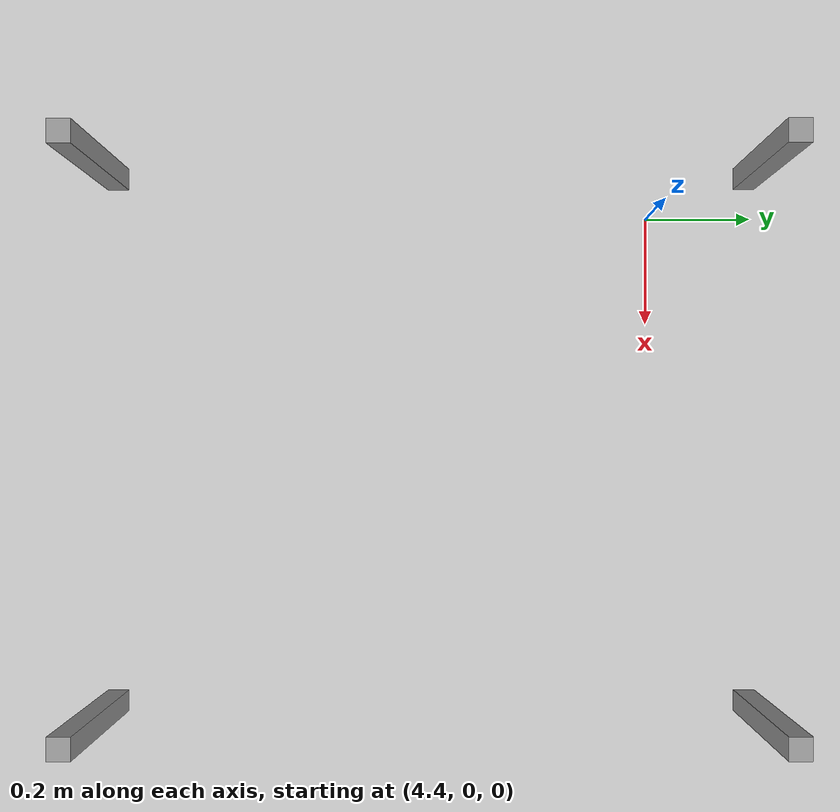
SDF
<sdf version="1.7">
 <world name="default">
  <model name="ground_plane">
   <static>1</static>
   <link name="link">
    <collision name="collision">
     <geometry><plane><normal>0 0 1</normal><size>100 100</size></plane></geometry>
     <surface>
      <contact><collide_bitmask>65535</collide_bitmask></contact>
      <friction><ode><mu>100</mu><mu2>50</mu2></ode></friction>
     </surface>
    </collision>
    <visual name="visual">
     <cast_shadows>0</cast_shadows>
     <geometry><plane><normal>0 0 1</normal><size>100 100</size></plane></geometry>
     <material>
      <script><uri>file://media/materials/scripts/gazebo.material</uri><name>Gazebo/Grey</name></script>
     </material>
    </visual>
   </link>
  </model>
  <model name="trolley2">
   <link name="link_0">
    <inertial>
     <mass>1.79769e+308</mass>
     <inertia>
      <ixx>1.79769e+308</ixx>
      <ixy>0</ixy>
      <ixz>0</ixz>
      <iyy>1.79769e+308</iyy>
      <iyz>0</iyz>
      <izz>1.79769e+308</izz>
     </inertia>
    </inertial>
    <pose>-0.5 -0.6 -0 0 -0 0</pose>
    <visual name="visual">
     <geometry><box><size>0.04 0.04 0.35</size></box></geometry>
     <material>
      <lighting>1</lighting>
      <script><uri>file://media/materials/scripts/gazebo.material</uri><name>Gazebo/Grey</name></script>
      <shader type="pixel"><normal_map>__default__</normal_map></shader>
      <ambient>0.3 0.3 0.3 1</ambient>
      <diffuse>0.7 0.7 0.7 1</diffuse>
      <specular>0.01 0.01 0.01 1</specular>
      <emissive>0 0 0 1</emissive>
     </material>
    </visual>
    <collision name="collision">
     <geometry><box><size>0.04 0.04 0.35</size></box></geometry>
     <surface>
      <friction>
       <ode><mu>1</mu><mu2>1</mu2><fdir1>0 0 0</fdir1><slip1>0</slip1><slip2>0</slip2></ode>
       <torsional>
        <coefficient>1</coefficient>
        <patch_radius>0</patch_radius>
        <surface_radius>0</surface_radius>
        <use_patch_radius>1</use_patch_radius>
        <ode><slip>0</slip></ode>
       </torsional>
      </friction>
      <bounce><restitution_coefficient>0</restitution_coefficient><threshold>1e+06</threshold></bounce>
      <contact>
       <collide_without_contact>0</collide_without_contact>
       <collide_without_contact_bitmask>1</collide_without_contact_bitmask>
       <collide_bitmask>1</collide_bitmask>
       <ode>
        <soft_cfm>0</soft_cfm>
        <soft_erp>0.2</soft_erp>
        <kp>1e+13</kp>
        <kd>1</kd>
        <max_vel>0.01</max_vel>
        <min_depth>0</min_depth>
       </ode>
       <bullet>
        <split_impulse>1</split_impulse>
        <split_impulse_penetration_threshold>-0.01</split_impulse_penetration_threshold>
        <soft_cfm>0</soft_cfm>
        <soft_erp>0.2</soft_erp>
        <kp>1e+13</kp>
        <kd>1</kd>
       </bullet>
      </contact>
     </surface>
    </collision>
    <collision name="collision_5">
     <geometry><box><size>0.04 0.04 0.35</size></box></geometry>
     <surface>
      <friction>
       <ode><mu>1</mu><mu2>1</mu2><fdir1>0 0 0</fdir1><slip1>0</slip1><slip2>0</slip2></ode>
       <torsional>
        <coefficient>1</coefficient>
        <patch_radius>0</patch_radius>
        <surface_radius>0</surface_radius>
        <use_patch_radius>1</use_patch_radius>
        <ode><slip>0</slip></ode>
       </torsional>
      </friction>
      <bounce><restitution_coefficient>0</restitution_coefficient><threshold>1e+06</threshold></bounce>
      <contact>
       <collide_without_contact>0</collide_without_contact>
       <collide_without_contact_bitmask>1</collide_without_contact_bitmask>
       <collide_bitmask>1</collide_bitmask>
       <ode>
        <soft_cfm>0</soft_cfm>
        <soft_erp>0.2</soft_erp>
        <kp>1e+13</kp>
        <kd>1</kd>
        <max_vel>0.01</max_vel>
        <min_depth>0</min_depth>
       </ode>
       <bullet>
        <split_impulse>1</split_impulse>
        <split_impulse_penetration_threshold>-0.01</split_impulse_penetration_threshold>
        <soft_cfm>0</soft_cfm>
        <soft_erp>0.2</soft_erp>
        <kp>1e+13</kp>
        <kd>1</kd>
       </bullet>
      </contact>
     </surface>
    </collision>
    <collision name="collision_1">
     <geometry><box><size>0.04 0.04 0.35</size></box></geometry>
     <surface>
      <friction>
       <ode><mu>1</mu><mu2>1</mu2><fdir1>0 0 0</fdir1><slip1>0</slip1><slip2>0</slip2></ode>
       <torsional>
        <coefficient>1</coefficient>
        <patch_radius>0</patch_radius>
        <surface_radius>0</surface_radius>
        <use_patch_radius>1</use_patch_radius>
        <ode><slip>0</slip></ode>
       </torsional>
      </friction>
      <bounce><restitution_coefficient>0</restitution_coefficient><threshold>1e+06</threshold></bounce>
      <contact>
       <collide_without_contact>0</collide_without_contact>
       <collide_without_contact_bitmask>1</collide_without_contact_bitmask>
       <collide_bitmask>1</collide_bitmask>
       <ode>
        <soft_cfm>0</soft_cfm>
        <soft_erp>0.2</soft_erp>
        <kp>1e+13</kp>
        <kd>1</kd>
        <max_vel>0.01</max_vel>
        <min_depth>0</min_depth>
       </ode>
       <bullet>
        <split_impulse>1</split_impulse>
        <split_impulse_penetration_threshold>-0.01</split_impulse_penetration_threshold>
        <soft_cfm>0</soft_cfm>
        <soft_erp>0.2</soft_erp>
        <kp>1e+13</kp>
        <kd>1</kd>
       </bullet>
      </contact>
     </surface>
    </collision>
    <collision name="collision_2">
     <geometry><box><size>0.04 0.04 0.35</size></box></geometry>
     <surface>
      <friction>
       <ode><mu>1</mu><mu2>1</mu2><fdir1>0 0 0</fdir1><slip1>0</slip1><slip2>0</slip2></ode>
       <torsional>
        <coefficient>1</coefficient>
        <patch_radius>0</patch_radius>
        <surface_radius>0</surface_radius>
        <use_patch_radius>1</use_patch_radius>
        <ode><slip>0</slip></ode>
       </torsional>
      </friction>
      <bounce><restitution_coefficient>0</restitution_coefficient><threshold>1e+06</threshold></bounce>
      <contact>
       <collide_without_contact>0</collide_without_contact>
       <collide_without_contact_bitmask>1</collide_without_contact_bitmask>
       <collide_bitmask>1</collide_bitmask>
       <ode>
        <soft_cfm>0</soft_cfm>
        <soft_erp>0.2</soft_erp>
        <kp>1e+13</kp>
        <kd>1</kd>
        <max_vel>0.01</max_vel>
        <min_depth>0</min_depth>
       </ode>
       <bullet>
        <split_impulse>1</split_impulse>
        <split_impulse_penetration_threshold>-0.01</split_impulse_penetration_threshold>
        <soft_cfm>0</soft_cfm>
        <soft_erp>0.2</soft_erp>
        <kp>1e+13</kp>
        <kd>1</kd>
       </bullet>
      </contact>
     </surface>
    </collision>
    <collision name="collision_3">
     <geometry><box><size>0.04 0.04 0.35</size></box></geometry>
     <surface>
      <friction>
       <ode><mu>1</mu><mu2>1</mu2><fdir1>0 0 0</fdir1><slip1>0</slip1><slip2>0</slip2></ode>
       <torsional>
        <coefficient>1</coefficient>
        <patch_radius>0</patch_radius>
        <surface_radius>0</surface_radius>
        <use_patch_radius>1</use_patch_radius>
        <ode><slip>0</slip></ode>
       </torsional>
      </friction>
      <bounce><restitution_coefficient>0</restitution_coefficient><threshold>1e+06</threshold></bounce>
      <contact>
       <collide_without_contact>0</collide_without_contact>
       <collide_without_contact_bitmask>1</collide_without_contact_bitmask>
       <collide_bitmask>1</collide_bitmask>
       <ode>
        <soft_cfm>0</soft_cfm>
        <soft_erp>0.2</soft_erp>
        <kp>1e+13</kp>
        <kd>1</kd>
        <max_vel>0.01</max_vel>
        <min_depth>0</min_depth>
       </ode>
       <bullet>
        <split_impulse>1</split_impulse>
        <split_impulse_penetration_threshold>-0.01</split_impulse_penetration_threshold>
        <soft_cfm>0</soft_cfm>
        <soft_erp>0.2</soft_erp>
        <kp>1e+13</kp>
        <kd>1</kd>
       </bullet>
      </contact>
     </surface>
    </collision>
    <collision name="collision_4">
     <geometry><sphere><radius>1.79769e+308</radius></sphere></geometry>
     <surface>
      <friction>
       <ode><mu>1</mu><mu2>1</mu2><fdir1>0 0 0</fdir1><slip1>0</slip1><slip2>0</slip2></ode>
       <torsional>
        <coefficient>1</coefficient>
        <patch_radius>0</patch_radius>
        <surface_radius>0</surface_radius>
        <use_patch_radius>1</use_patch_radius>
        <ode><slip>0</slip></ode>
       </torsional>
      </friction>
      <bounce><restitution_coefficient>0</restitution_coefficient><threshold>1e+06</threshold></bounce>
      <contact>
       <collide_without_contact>0</collide_without_contact>
       <collide_without_contact_bitmask>1</collide_without_contact_bitmask>
       <collide_bitmask>1</collide_bitmask>
       <ode>
        <soft_cfm>0</soft_cfm>
        <soft_erp>0.2</soft_erp>
        <kp>1e+13</kp>
        <kd>1</kd>
        <max_vel>0.01</max_vel>
        <min_depth>0</min_depth>
       </ode>
       <bullet>
        <split_impulse>1</split_impulse>
        <split_impulse_penetration_threshold>-0.01</split_impulse_penetration_threshold>
        <soft_cfm>0</soft_cfm>
        <soft_erp>0.2</soft_erp>
        <kp>1e+13</kp>
        <kd>1</kd>
       </bullet>
      </contact>
     </surface>
    </collision>
   </link>
   <link name="link_0_clone">
    <inertial>
     <mass>1.79769e+308</mass>
     <inertia>
      <ixx>1.79769e+308</ixx>
      <ixy>0</ixy>
      <ixz>0</ixz>
      <iyy>1.79769e+308</iyy>
      <iyz>0</iyz>
      <izz>1.79769e+308</izz>
     </inertia>
    </inertial>
    <pose>-0.5 0.6 -0 0 -0 0</pose>
    <visual name="visual">
     <geometry><box><size>0.04 0.04 0.35</size></box></geometry>
     <material>
      <lighting>1</lighting>
      <script><uri>file://media/materials/scripts/gazebo.material</uri><name>Gazebo/Grey</name></script>
      <shader type="pixel"><normal_map>__default__</normal_map></shader>
      <ambient>0.3 0.3 0.3 1</ambient>
      <diffuse>0.7 0.7 0.7 1</diffuse>
      <specular>0.01 0.01 0.01 1</specular>
      <emissive>0 0 0 1</emissive>
     </material>
    </visual>
    <collision name="collision">
     <geometry><box><size>0.04 0.04 0.35</size></box></geometry>
     <surface>
      <friction>
       <ode><mu>1</mu><mu2>1</mu2><fdir1>0 0 0</fdir1><slip1>0</slip1><slip2>0</slip2></ode>
       <torsional>
        <coefficient>1</coefficient>
        <patch_radius>0</patch_radius>
        <surface_radius>0</surface_radius>
        <use_patch_radius>1</use_patch_radius>
        <ode><slip>0</slip></ode>
       </torsional>
      </friction>
      <bounce><restitution_coefficient>0</restitution_coefficient><threshold>1e+06</threshold></bounce>
      <contact>
       <collide_without_contact>0</collide_without_contact>
       <collide_without_contact_bitmask>1</collide_without_contact_bitmask>
       <collide_bitmask>1</collide_bitmask>
       <ode>
        <soft_cfm>0</soft_cfm>
        <soft_erp>0.2</soft_erp>
        <kp>1e+13</kp>
        <kd>1</kd>
        <max_vel>0.01</max_vel>
        <min_depth>0</min_depth>
       </ode>
       <bullet>
        <split_impulse>1</split_impulse>
        <split_impulse_penetration_threshold>-0.01</split_impulse_penetration_threshold>
        <soft_cfm>0</soft_cfm>
        <soft_erp>0.2</soft_erp>
        <kp>1e+13</kp>
        <kd>1</kd>
       </bullet>
      </contact>
     </surface>
    </collision>
    <collision name="collision_5">
     <geometry><box><size>0.04 0.04 0.35</size></box></geometry>
     <surface>
      <friction>
       <ode><mu>1</mu><mu2>1</mu2><fdir1>0 0 0</fdir1><slip1>0</slip1><slip2>0</slip2></ode>
       <torsional>
        <coefficient>1</coefficient>
        <patch_radius>0</patch_radius>
        <surface_radius>0</surface_radius>
        <use_patch_radius>1</use_patch_radius>
        <ode><slip>0</slip></ode>
       </torsional>
      </friction>
      <bounce><restitution_coefficient>0</restitution_coefficient><threshold>1e+06</threshold></bounce>
      <contact>
       <collide_without_contact>0</collide_without_contact>
       <collide_without_contact_bitmask>1</collide_without_contact_bitmask>
       <collide_bitmask>1</collide_bitmask>
       <ode>
        <soft_cfm>0</soft_cfm>
        <soft_erp>0.2</soft_erp>
        <kp>1e+13</kp>
        <kd>1</kd>
        <max_vel>0.01</max_vel>
        <min_depth>0</min_depth>
       </ode>
       <bullet>
        <split_impulse>1</split_impulse>
        <split_impulse_penetration_threshold>-0.01</split_impulse_penetration_threshold>
        <soft_cfm>0</soft_cfm>
        <soft_erp>0.2</soft_erp>
        <kp>1e+13</kp>
        <kd>1</kd>
       </bullet>
      </contact>
     </surface>
    </collision>
    <collision name="collision_1">
     <geometry><box><size>0.04 0.04 0.35</size></box></geometry>
     <surface>
      <friction>
       <ode><mu>1</mu><mu2>1</mu2><fdir1>0 0 0</fdir1><slip1>0</slip1><slip2>0</slip2></ode>
       <torsional>
        <coefficient>1</coefficient>
        <patch_radius>0</patch_radius>
        <surface_radius>0</surface_radius>
        <use_patch_radius>1</use_patch_radius>
        <ode><slip>0</slip></ode>
       </torsional>
      </friction>
      <bounce><restitution_coefficient>0</restitution_coefficient><threshold>1e+06</threshold></bounce>
      <contact>
       <collide_without_contact>0</collide_without_contact>
       <collide_without_contact_bitmask>1</collide_without_contact_bitmask>
       <collide_bitmask>1</collide_bitmask>
       <ode>
        <soft_cfm>0</soft_cfm>
        <soft_erp>0.2</soft_erp>
        <kp>1e+13</kp>
        <kd>1</kd>
        <max_vel>0.01</max_vel>
        <min_depth>0</min_depth>
       </ode>
       <bullet>
        <split_impulse>1</split_impulse>
        <split_impulse_penetration_threshold>-0.01</split_impulse_penetration_threshold>
        <soft_cfm>0</soft_cfm>
        <soft_erp>0.2</soft_erp>
        <kp>1e+13</kp>
        <kd>1</kd>
       </bullet>
      </contact>
     </surface>
    </collision>
    <collision name="collision_2">
     <geometry><box><size>0.04 0.04 0.35</size></box></geometry>
     <surface>
      <friction>
       <ode><mu>1</mu><mu2>1</mu2><fdir1>0 0 0</fdir1><slip1>0</slip1><slip2>0</slip2></ode>
       <torsional>
        <coefficient>1</coefficient>
        <patch_radius>0</patch_radius>
        <surface_radius>0</surface_radius>
        <use_patch_radius>1</use_patch_radius>
        <ode><slip>0</slip></ode>
       </torsional>
      </friction>
      <bounce><restitution_coefficient>0</restitution_coefficient><threshold>1e+06</threshold></bounce>
      <contact>
       <collide_without_contact>0</collide_without_contact>
       <collide_without_contact_bitmask>1</collide_without_contact_bitmask>
       <collide_bitmask>1</collide_bitmask>
       <ode>
        <soft_cfm>0</soft_cfm>
        <soft_erp>0.2</soft_erp>
        <kp>1e+13</kp>
        <kd>1</kd>
        <max_vel>0.01</max_vel>
        <min_depth>0</min_depth>
       </ode>
       <bullet>
        <split_impulse>1</split_impulse>
        <split_impulse_penetration_threshold>-0.01</split_impulse_penetration_threshold>
        <soft_cfm>0</soft_cfm>
        <soft_erp>0.2</soft_erp>
        <kp>1e+13</kp>
        <kd>1</kd>
       </bullet>
      </contact>
     </surface>
    </collision>
    <collision name="collision_3">
     <geometry><box><size>0.04 0.04 0.35</size></box></geometry>
     <surface>
      <friction>
       <ode><mu>1</mu><mu2>1</mu2><fdir1>0 0 0</fdir1><slip1>0</slip1><slip2>0</slip2></ode>
       <torsional>
        <coefficient>1</coefficient>
        <patch_radius>0</patch_radius>
        <surface_radius>0</surface_radius>
        <use_patch_radius>1</use_patch_radius>
        <ode><slip>0</slip></ode>
       </torsional>
      </friction>
      <bounce><restitution_coefficient>0</restitution_coefficient><threshold>1e+06</threshold></bounce>
      <contact>
       <collide_without_contact>0</collide_without_contact>
       <collide_without_contact_bitmask>1</collide_without_contact_bitmask>
       <collide_bitmask>1</collide_bitmask>
       <ode>
        <soft_cfm>0</soft_cfm>
        <soft_erp>0.2</soft_erp>
        <kp>1e+13</kp>
        <kd>1</kd>
        <max_vel>0.01</max_vel>
        <min_depth>0</min_depth>
       </ode>
       <bullet>
        <split_impulse>1</split_impulse>
        <split_impulse_penetration_threshold>-0.01</split_impulse_penetration_threshold>
        <soft_cfm>0</soft_cfm>
        <soft_erp>0.2</soft_erp>
        <kp>1e+13</kp>
        <kd>1</kd>
       </bullet>
      </contact>
     </surface>
    </collision>
    <collision name="collision_4">
     <geometry><sphere><radius>1.79769e+308</radius></sphere></geometry>
     <surface>
      <friction>
       <ode><mu>1</mu><mu2>1</mu2><fdir1>0 0 0</fdir1><slip1>0</slip1><slip2>0</slip2></ode>
       <torsional>
        <coefficient>1</coefficient>
        <patch_radius>0</patch_radius>
        <surface_radius>0</surface_radius>
        <use_patch_radius>1</use_patch_radius>
        <ode><slip>0</slip></ode>
       </torsional>
      </friction>
      <bounce><restitution_coefficient>0</restitution_coefficient><threshold>1e+06</threshold></bounce>
      <contact>
       <collide_without_contact>0</collide_without_contact>
       <collide_without_contact_bitmask>1</collide_without_contact_bitmask>
       <collide_bitmask>1</collide_bitmask>
       <ode>
        <soft_cfm>0</soft_cfm>
        <soft_erp>0.2</soft_erp>
        <kp>1e+13</kp>
        <kd>1</kd>
        <max_vel>0.01</max_vel>
        <min_depth>0</min_depth>
       </ode>
       <bullet>
        <split_impulse>1</split_impulse>
        <split_impulse_penetration_threshold>-0.01</split_impulse_penetration_threshold>
        <soft_cfm>0</soft_cfm>
        <soft_erp>0.2</soft_erp>
        <kp>1e+13</kp>
        <kd>1</kd>
       </bullet>
      </contact>
     </surface>
    </collision>
   </link>
   <link name="link_0_clone_clone">
    <inertial>
     <mass>1.79769e+308</mass>
     <inertia>
      <ixx>1.79769e+308</ixx>
      <ixy>0</ixy>
      <ixz>0</ixz>
      <iyy>1.79769e+308</iyy>
      <iyz>0</iyz>
      <izz>1.79769e+308</izz>
     </inertia>
    </inertial>
    <pose>0.5 0.6 -0 0 -0 0</pose>
    <visual name="visual">
     <geometry><box><size>0.04 0.04 0.35</size></box></geometry>
     <material>
      <lighting>1</lighting>
      <script><uri>file://media/materials/scripts/gazebo.material</uri><name>Gazebo/Grey</name></script>
      <shader type="pixel"><normal_map>__default__</normal_map></shader>
      <ambient>0.3 0.3 0.3 1</ambient>
      <diffuse>0.7 0.7 0.7 1</diffuse>
      <specular>0.01 0.01 0.01 1</specular>
      <emissive>0 0 0 1</emissive>
     </material>
    </visual>
    <collision name="collision">
     <geometry><box><size>0.04 0.04 0.35</size></box></geometry>
     <surface>
      <friction>
       <ode><mu>1</mu><mu2>1</mu2><fdir1>0 0 0</fdir1><slip1>0</slip1><slip2>0</slip2></ode>
       <torsional>
        <coefficient>1</coefficient>
        <patch_radius>0</patch_radius>
        <surface_radius>0</surface_radius>
        <use_patch_radius>1</use_patch_radius>
        <ode><slip>0</slip></ode>
       </torsional>
      </friction>
      <bounce><restitution_coefficient>0</restitution_coefficient><threshold>1e+06</threshold></bounce>
      <contact>
       <collide_without_contact>0</collide_without_contact>
       <collide_without_contact_bitmask>1</collide_without_contact_bitmask>
       <collide_bitmask>1</collide_bitmask>
       <ode>
        <soft_cfm>0</soft_cfm>
        <soft_erp>0.2</soft_erp>
        <kp>1e+13</kp>
        <kd>1</kd>
        <max_vel>0.01</max_vel>
        <min_depth>0</min_depth>
       </ode>
       <bullet>
        <split_impulse>1</split_impulse>
        <split_impulse_penetration_threshold>-0.01</split_impulse_penetration_threshold>
        <soft_cfm>0</soft_cfm>
        <soft_erp>0.2</soft_erp>
        <kp>1e+13</kp>
        <kd>1</kd>
       </bullet>
      </contact>
     </surface>
    </collision>
    <collision name="collision_1">
     <geometry><box><size>0.04 0.04 0.35</size></box></geometry>
     <surface>
      <friction>
       <ode><mu>1</mu><mu2>1</mu2><fdir1>0 0 0</fdir1><slip1>0</slip1><slip2>0</slip2></ode>
       <torsional>
        <coefficient>1</coefficient>
        <patch_radius>0</patch_radius>
        <surface_radius>0</surface_radius>
        <use_patch_radius>1</use_patch_radius>
        <ode><slip>0</slip></ode>
       </torsional>
      </friction>
      <bounce><restitution_coefficient>0</restitution_coefficient><threshold>1e+06</threshold></bounce>
      <contact>
       <collide_without_contact>0</collide_without_contact>
       <collide_without_contact_bitmask>1</collide_without_contact_bitmask>
       <collide_bitmask>1</collide_bitmask>
       <ode>
        <soft_cfm>0</soft_cfm>
        <soft_erp>0.2</soft_erp>
        <kp>1e+13</kp>
        <kd>1</kd>
        <max_vel>0.01</max_vel>
        <min_depth>0</min_depth>
       </ode>
       <bullet>
        <split_impulse>1</split_impulse>
        <split_impulse_penetration_threshold>-0.01</split_impulse_penetration_threshold>
        <soft_cfm>0</soft_cfm>
        <soft_erp>0.2</soft_erp>
        <kp>1e+13</kp>
        <kd>1</kd>
       </bullet>
      </contact>
     </surface>
    </collision>
    <collision name="collision_5">
     <geometry><box><size>0.04 0.04 0.35</size></box></geometry>
     <surface>
      <friction>
       <ode><mu>1</mu><mu2>1</mu2><fdir1>0 0 0</fdir1><slip1>0</slip1><slip2>0</slip2></ode>
       <torsional>
        <coefficient>1</coefficient>
        <patch_radius>0</patch_radius>
        <surface_radius>0</surface_radius>
        <use_patch_radius>1</use_patch_radius>
        <ode><slip>0</slip></ode>
       </torsional>
      </friction>
      <bounce><restitution_coefficient>0</restitution_coefficient><threshold>1e+06</threshold></bounce>
      <contact>
       <collide_without_contact>0</collide_without_contact>
       <collide_without_contact_bitmask>1</collide_without_contact_bitmask>
       <collide_bitmask>1</collide_bitmask>
       <ode>
        <soft_cfm>0</soft_cfm>
        <soft_erp>0.2</soft_erp>
        <kp>1e+13</kp>
        <kd>1</kd>
        <max_vel>0.01</max_vel>
        <min_depth>0</min_depth>
       </ode>
       <bullet>
        <split_impulse>1</split_impulse>
        <split_impulse_penetration_threshold>-0.01</split_impulse_penetration_threshold>
        <soft_cfm>0</soft_cfm>
        <soft_erp>0.2</soft_erp>
        <kp>1e+13</kp>
        <kd>1</kd>
       </bullet>
      </contact>
     </surface>
    </collision>
    <collision name="collision_2">
     <geometry><box><size>0.04 0.04 0.35</size></box></geometry>
     <surface>
      <friction>
       <ode><mu>1</mu><mu2>1</mu2><fdir1>0 0 0</fdir1><slip1>0</slip1><slip2>0</slip2></ode>
       <torsional>
        <coefficient>1</coefficient>
        <patch_radius>0</patch_radius>
        <surface_radius>0</surface_radius>
        <use_patch_radius>1</use_patch_radius>
        <ode><slip>0</slip></ode>
       </torsional>
      </friction>
      <bounce><restitution_coefficient>0</restitution_coefficient><threshold>1e+06</threshold></bounce>
      <contact>
       <collide_without_contact>0</collide_without_contact>
       <collide_without_contact_bitmask>1</collide_without_contact_bitmask>
       <collide_bitmask>1</collide_bitmask>
       <ode>
        <soft_cfm>0</soft_cfm>
        <soft_erp>0.2</soft_erp>
        <kp>1e+13</kp>
        <kd>1</kd>
        <max_vel>0.01</max_vel>
        <min_depth>0</min_depth>
       </ode>
       <bullet>
        <split_impulse>1</split_impulse>
        <split_impulse_penetration_threshold>-0.01</split_impulse_penetration_threshold>
        <soft_cfm>0</soft_cfm>
        <soft_erp>0.2</soft_erp>
        <kp>1e+13</kp>
        <kd>1</kd>
       </bullet>
      </contact>
     </surface>
    </collision>
    <collision name="collision_3">
     <geometry><box><size>0.04 0.04 0.35</size></box></geometry>
     <surface>
      <friction>
       <ode><mu>1</mu><mu2>1</mu2><fdir1>0 0 0</fdir1><slip1>0</slip1><slip2>0</slip2></ode>
       <torsional>
        <coefficient>1</coefficient>
        <patch_radius>0</patch_radius>
        <surface_radius>0</surface_radius>
        <use_patch_radius>1</use_patch_radius>
        <ode><slip>0</slip></ode>
       </torsional>
      </friction>
      <bounce><restitution_coefficient>0</restitution_coefficient><threshold>1e+06</threshold></bounce>
      <contact>
       <collide_without_contact>0</collide_without_contact>
       <collide_without_contact_bitmask>1</collide_without_contact_bitmask>
       <collide_bitmask>1</collide_bitmask>
       <ode>
        <soft_cfm>0</soft_cfm>
        <soft_erp>0.2</soft_erp>
        <kp>1e+13</kp>
        <kd>1</kd>
        <max_vel>0.01</max_vel>
        <min_depth>0</min_depth>
       </ode>
       <bullet>
        <split_impulse>1</split_impulse>
        <split_impulse_penetration_threshold>-0.01</split_impulse_penetration_threshold>
        <soft_cfm>0</soft_cfm>
        <soft_erp>0.2</soft_erp>
        <kp>1e+13</kp>
        <kd>1</kd>
       </bullet>
      </contact>
     </surface>
    </collision>
    <collision name="collision_4">
     <geometry><sphere><radius>1.79769e+308</radius></sphere></geometry>
     <surface>
      <friction>
       <ode><mu>1</mu><mu2>1</mu2><fdir1>0 0 0</fdir1><slip1>0</slip1><slip2>0</slip2></ode>
       <torsional>
        <coefficient>1</coefficient>
        <patch_radius>0</patch_radius>
        <surface_radius>0</surface_radius>
        <use_patch_radius>1</use_patch_radius>
        <ode><slip>0</slip></ode>
       </torsional>
      </friction>
      <bounce><restitution_coefficient>0</restitution_coefficient><threshold>1e+06</threshold></bounce>
      <contact>
       <collide_without_contact>0</collide_without_contact>
       <collide_without_contact_bitmask>1</collide_without_contact_bitmask>
       <collide_bitmask>1</collide_bitmask>
       <ode>
        <soft_cfm>0</soft_cfm>
        <soft_erp>0.2</soft_erp>
        <kp>1e+13</kp>
        <kd>1</kd>
        <max_vel>0.01</max_vel>
        <min_depth>0</min_depth>
       </ode>
       <bullet>
        <split_impulse>1</split_impulse>
        <split_impulse_penetration_threshold>-0.01</split_impulse_penetration_threshold>
        <soft_cfm>0</soft_cfm>
        <soft_erp>0.2</soft_erp>
        <kp>1e+13</kp>
        <kd>1</kd>
       </bullet>
      </contact>
     </surface>
    </collision>
   </link>
   <link name="link_0_clone_clone_clone">
    <inertial>
     <mass>1.79769e+308</mass>
     <inertia>
      <ixx>1.79769e+308</ixx>
      <ixy>0</ixy>
      <ixz>0</ixz>
      <iyy>1.79769e+308</iyy>
      <iyz>0</iyz>
      <izz>1.79769e+308</izz>
     </inertia>
    </inertial>
    <pose>0.5 -0.6 -0 0 -0 0</pose>
    <visual name="visual">
     <geometry><box><size>0.04 0.04 0.35</size></box></geometry>
     <material>
      <lighting>1</lighting>
      <script><uri>file://media/materials/scripts/gazebo.material</uri><name>Gazebo/Grey</name></script>
      <shader type="pixel"><normal_map>__default__</normal_map></shader>
      <ambient>0.3 0.3 0.3 1</ambient>
      <diffuse>0.7 0.7 0.7 1</diffuse>
      <specular>0.01 0.01 0.01 1</specular>
      <emissive>0 0 0 1</emissive>
     </material>
    </visual>
    <collision name="collision">
     <geometry><box><size>0.04 0.04 0.35</size></box></geometry>
     <surface>
      <friction>
       <ode><mu>1</mu><mu2>1</mu2><fdir1>0 0 0</fdir1><slip1>0</slip1><slip2>0</slip2></ode>
       <torsional>
        <coefficient>1</coefficient>
        <patch_radius>0</patch_radius>
        <surface_radius>0</surface_radius>
        <use_patch_radius>1</use_patch_radius>
        <ode><slip>0</slip></ode>
       </torsional>
      </friction>
      <bounce><restitution_coefficient>0</restitution_coefficient><threshold>1e+06</threshold></bounce>
      <contact>
       <collide_without_contact>0</collide_without_contact>
       <collide_without_contact_bitmask>1</collide_without_contact_bitmask>
       <collide_bitmask>1</collide_bitmask>
       <ode>
        <soft_cfm>0</soft_cfm>
        <soft_erp>0.2</soft_erp>
        <kp>1e+13</kp>
        <kd>1</kd>
        <max_vel>0.01</max_vel>
        <min_depth>0</min_depth>
       </ode>
       <bullet>
        <split_impulse>1</split_impulse>
        <split_impulse_penetration_threshold>-0.01</split_impulse_penetration_threshold>
        <soft_cfm>0</soft_cfm>
        <soft_erp>0.2</soft_erp>
        <kp>1e+13</kp>
        <kd>1</kd>
       </bullet>
      </contact>
     </surface>
    </collision>
    <collision name="collision_5">
     <geometry><box><size>0.04 0.04 0.35</size></box></geometry>
     <surface>
      <friction>
       <ode><mu>1</mu><mu2>1</mu2><fdir1>0 0 0</fdir1><slip1>0</slip1><slip2>0</slip2></ode>
       <torsional>
        <coefficient>1</coefficient>
        <patch_radius>0</patch_radius>
        <surface_radius>0</surface_radius>
        <use_patch_radius>1</use_patch_radius>
        <ode><slip>0</slip></ode>
       </torsional>
      </friction>
      <bounce><restitution_coefficient>0</restitution_coefficient><threshold>1e+06</threshold></bounce>
      <contact>
       <collide_without_contact>0</collide_without_contact>
       <collide_without_contact_bitmask>1</collide_without_contact_bitmask>
       <collide_bitmask>1</collide_bitmask>
       <ode>
        <soft_cfm>0</soft_cfm>
        <soft_erp>0.2</soft_erp>
        <kp>1e+13</kp>
        <kd>1</kd>
        <max_vel>0.01</max_vel>
        <min_depth>0</min_depth>
       </ode>
       <bullet>
        <split_impulse>1</split_impulse>
        <split_impulse_penetration_threshold>-0.01</split_impulse_penetration_threshold>
        <soft_cfm>0</soft_cfm>
        <soft_erp>0.2</soft_erp>
        <kp>1e+13</kp>
        <kd>1</kd>
       </bullet>
      </contact>
     </surface>
    </collision>
    <collision name="collision_1">
     <geometry><box><size>0.04 0.04 0.35</size></box></geometry>
     <surface>
      <friction>
       <ode><mu>1</mu><mu2>1</mu2><fdir1>0 0 0</fdir1><slip1>0</slip1><slip2>0</slip2></ode>
       <torsional>
        <coefficient>1</coefficient>
        <patch_radius>0</patch_radius>
        <surface_radius>0</surface_radius>
        <use_patch_radius>1</use_patch_radius>
        <ode><slip>0</slip></ode>
       </torsional>
      </friction>
      <bounce><restitution_coefficient>0</restitution_coefficient><threshold>1e+06</threshold></bounce>
      <contact>
       <collide_without_contact>0</collide_without_contact>
       <collide_without_contact_bitmask>1</collide_without_contact_bitmask>
       <collide_bitmask>1</collide_bitmask>
       <ode>
        <soft_cfm>0</soft_cfm>
        <soft_erp>0.2</soft_erp>
        <kp>1e+13</kp>
        <kd>1</kd>
        <max_vel>0.01</max_vel>
        <min_depth>0</min_depth>
       </ode>
       <bullet>
        <split_impulse>1</split_impulse>
        <split_impulse_penetration_threshold>-0.01</split_impulse_penetration_threshold>
        <soft_cfm>0</soft_cfm>
        <soft_erp>0.2</soft_erp>
        <kp>1e+13</kp>
        <kd>1</kd>
       </bullet>
      </contact>
     </surface>
    </collision>
    <collision name="collision_2">
     <geometry><box><size>0.04 0.04 0.35</size></box></geometry>
     <surface>
      <friction>
       <ode><mu>1</mu><mu2>1</mu2><fdir1>0 0 0</fdir1><slip1>0</slip1><slip2>0</slip2></ode>
       <torsional>
        <coefficient>1</coefficient>
        <patch_radius>0</patch_radius>
        <surface_radius>0</surface_radius>
        <use_patch_radius>1</use_patch_radius>
        <ode><slip>0</slip></ode>
       </torsional>
      </friction>
      <bounce><restitution_coefficient>0</restitution_coefficient><threshold>1e+06</threshold></bounce>
      <contact>
       <collide_without_contact>0</collide_without_contact>
       <collide_without_contact_bitmask>1</collide_without_contact_bitmask>
       <collide_bitmask>1</collide_bitmask>
       <ode>
        <soft_cfm>0</soft_cfm>
        <soft_erp>0.2</soft_erp>
        <kp>1e+13</kp>
        <kd>1</kd>
        <max_vel>0.01</max_vel>
        <min_depth>0</min_depth>
       </ode>
       <bullet>
        <split_impulse>1</split_impulse>
        <split_impulse_penetration_threshold>-0.01</split_impulse_penetration_threshold>
        <soft_cfm>0</soft_cfm>
        <soft_erp>0.2</soft_erp>
        <kp>1e+13</kp>
        <kd>1</kd>
       </bullet>
      </contact>
     </surface>
    </collision>
    <collision name="collision_3">
     <geometry><box><size>0.04 0.04 0.35</size></box></geometry>
     <surface>
      <friction>
       <ode><mu>1</mu><mu2>1</mu2><fdir1>0 0 0</fdir1><slip1>0</slip1><slip2>0</slip2></ode>
       <torsional>
        <coefficient>1</coefficient>
        <patch_radius>0</patch_radius>
        <surface_radius>0</surface_radius>
        <use_patch_radius>1</use_patch_radius>
        <ode><slip>0</slip></ode>
       </torsional>
      </friction>
      <bounce><restitution_coefficient>0</restitution_coefficient><threshold>1e+06</threshold></bounce>
      <contact>
       <collide_without_contact>0</collide_without_contact>
       <collide_without_contact_bitmask>1</collide_without_contact_bitmask>
       <collide_bitmask>1</collide_bitmask>
       <ode>
        <soft_cfm>0</soft_cfm>
        <soft_erp>0.2</soft_erp>
        <kp>1e+13</kp>
        <kd>1</kd>
        <max_vel>0.01</max_vel>
        <min_depth>0</min_depth>
       </ode>
       <bullet>
        <split_impulse>1</split_impulse>
        <split_impulse_penetration_threshold>-0.01</split_impulse_penetration_threshold>
        <soft_cfm>0</soft_cfm>
        <soft_erp>0.2</soft_erp>
        <kp>1e+13</kp>
        <kd>1</kd>
       </bullet>
      </contact>
     </surface>
    </collision>
    <collision name="collision_4">
     <geometry><sphere><radius>1.79769e+308</radius></sphere></geometry>
     <surface>
      <friction>
       <ode><mu>1</mu><mu2>1</mu2><fdir1>0 0 0</fdir1><slip1>0</slip1><slip2>0</slip2></ode>
       <torsional>
        <coefficient>1</coefficient>
        <patch_radius>0</patch_radius>
        <surface_radius>0</surface_radius>
        <use_patch_radius>1</use_patch_radius>
        <ode><slip>0</slip></ode>
       </torsional>
      </friction>
      <bounce><restitution_coefficient>0</restitution_coefficient><threshold>1e+06</threshold></bounce>
      <contact>
       <collide_without_contact>0</collide_without_contact>
       <collide_without_contact_bitmask>1</collide_without_contact_bitmask>
       <collide_bitmask>1</collide_bitmask>
       <ode>
        <soft_cfm>0</soft_cfm>
        <soft_erp>0.2</soft_erp>
        <kp>1e+13</kp>
        <kd>1</kd>
        <max_vel>0.01</max_vel>
        <min_depth>0</min_depth>
       </ode>
       <bullet>
        <split_impulse>1</split_impulse>
        <split_impulse_penetration_threshold>-0.01</split_impulse_penetration_threshold>
        <soft_cfm>0</soft_cfm>
        <soft_erp>0.2</soft_erp>
        <kp>1e+13</kp>
        <kd>1</kd>
       </bullet>
      </contact>
     </surface>
    </collision>
   </link>
   <static>1</static>
   <pose>4.82206 -0.41162 0.175 0 -0 0</pose>
  </model>
 </world>
</sdf>
